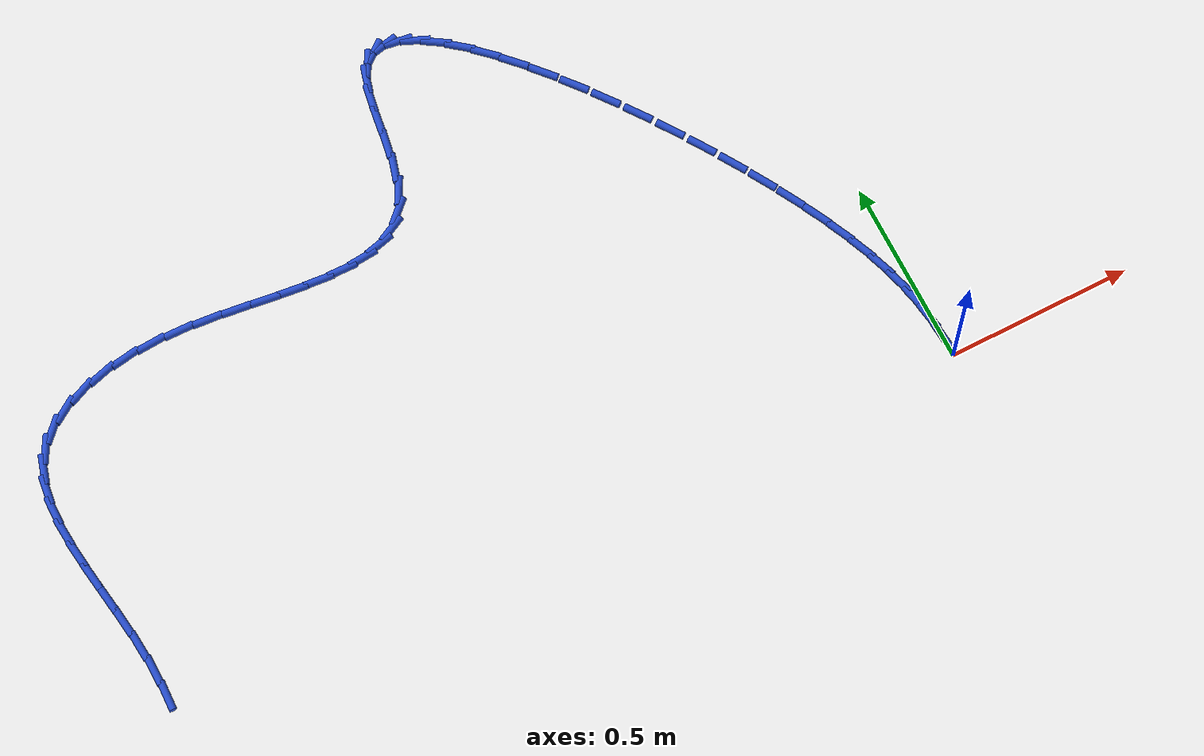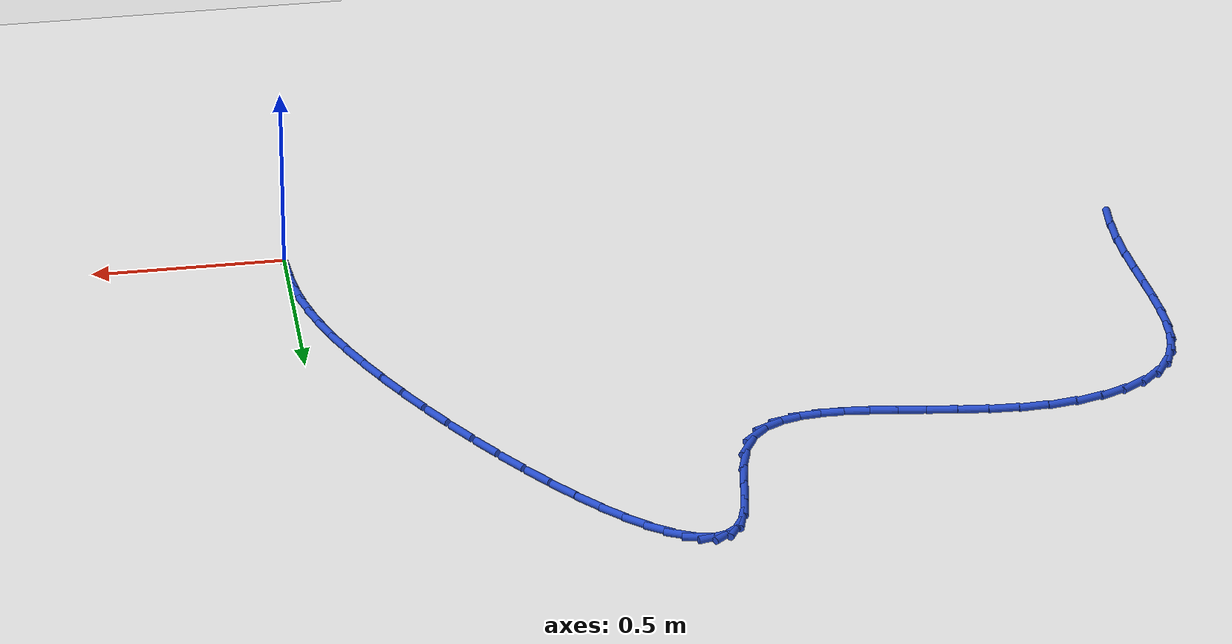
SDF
<sdf version="1.6">
 <world name="default">
  <model name="ground_plane">
   <static>1</static>
   <link name="link">
    <collision name="collision">
     <geometry><plane><normal>0 0 1</normal><size>100 100</size></plane></geometry>
     <surface><friction><ode><mu>100</mu><mu2>50</mu2></ode></friction></surface>
    </collision>
    <visual name="visual">
     <cast_shadows>0</cast_shadows>
     <geometry><plane><normal>0 0 1</normal><size>100 100</size></plane></geometry>
     <material>
      <script><uri>file://media/materials/scripts/gazebo.material</uri><name>Gazebo/WhiteGlow</name></script>
     </material>
    </visual>
   </link>
  </model>
  <model name="line">
   <link name="link_1">
    <pose>-0.0011779930362699025 0.060176432748080315 0.01 0 1.57 -1.483784300467491</pose>
    <collision name="collision">
     <geometry><cylinder><radius>0.01</radius><length>0.08</length></cylinder></geometry>
    </collision>
    <visual name="visual">
     <material>
      <script><name>Gazebo/Blue</name><uri>file://media/materials/scripts/gazebo.material</uri></script>
     </material>
     <geometry><cylinder><radius>0.01</radius><length>0.08</length></cylinder></geometry>
    </visual>
   </link>
   <link name="link_2">
    <pose>-0.006324387085127437 0.1191728699428828 0.01 0 1.57 -1.4138084706846794</pose>
    <collision name="collision">
     <geometry><cylinder><radius>0.01</radius><length>0.08</length></cylinder></geometry>
    </collision>
    <visual name="visual">
     <material>
      <script><name>Gazebo/Blue</name><uri>file://media/materials/scripts/gazebo.material</uri></script>
     </material>
     <geometry><cylinder><radius>0.01</radius><length>0.08</length></cylinder></geometry>
    </visual>
   </link>
   <link name="link_3">
    <pose>-0.015595806867634013 0.17774510147746933 0.01 0 1.57 -1.3446442154031313</pose>
    <collision name="collision">
     <geometry><cylinder><radius>0.01</radius><length>0.08</length></cylinder></geometry>
    </collision>
    <visual name="visual">
     <material>
      <script><name>Gazebo/Blue</name><uri>file://media/materials/scripts/gazebo.material</uri></script>
     </material>
     <geometry><cylinder><radius>0.01</radius><length>0.08</length></cylinder></geometry>
    </visual>
   </link>
   <link name="link_4">
    <pose>-0.029148877104850965 0.2366489172449016 0.01 0 1.57 -1.279431468152823</pose>
    <collision name="collision">
     <geometry><cylinder><radius>0.01</radius><length>0.08</length></cylinder></geometry>
    </collision>
    <visual name="visual">
     <material>
      <script><name>Gazebo/Blue</name><uri>file://media/materials/scripts/gazebo.material</uri></script>
     </material>
     <geometry><cylinder><radius>0.01</radius><length>0.08</length></cylinder></geometry>
    </visual>
   </link>
   <link name="link_5">
    <pose>-0.047140222517839704 0.29664010713824174 0.01 0 1.57 -1.220583079216178</pose>
    <collision name="collision">
     <geometry><cylinder><radius>0.01</radius><length>0.08</length></cylinder></geometry>
    </collision>
    <visual name="visual">
     <material>
      <script><name>Gazebo/Blue</name><uri>file://media/materials/scripts/gazebo.material</uri></script>
     </material>
     <geometry><cylinder><radius>0.01</radius><length>0.08</length></cylinder></geometry>
    </visual>
   </link>
   <link name="link_6">
    <pose>-0.06972646782766165 0.35847446105055153 0.01 0 1.57 -1.1695356038434659</pose>
    <collision name="collision">
     <geometry><cylinder><radius>0.01</radius><length>0.08</length></cylinder></geometry>
    </collision>
    <visual name="visual">
     <material>
      <script><name>Gazebo/Blue</name><uri>file://media/materials/scripts/gazebo.material</uri></script>
     </material>
     <geometry><cylinder><radius>0.01</radius><length>0.08</length></cylinder></geometry>
    </visual>
   </link>
   <link name="link_7">
    <pose>-0.09706423775537805 0.42290776887489256 0.01 0 1.57 -1.126787316354783</pose>
    <collision name="collision">
     <geometry><cylinder><radius>0.01</radius><length>0.08</length></cylinder></geometry>
    </collision>
    <visual name="visual">
     <material>
      <script><name>Gazebo/Blue</name><uri>file://media/materials/scripts/gazebo.material</uri></script>
     </material>
     <geometry><cylinder><radius>0.01</radius><length>0.08</length></cylinder></geometry>
    </visual>
   </link>
   <link name="link_8">
    <pose>-0.12931015702205037 0.4906958205043269 0.01 0 1.57 -1.0919233688777297</pose>
    <collision name="collision">
     <geometry><cylinder><radius>0.01</radius><length>0.08</length></cylinder></geometry>
    </collision>
    <visual name="visual">
     <material>
      <script><name>Gazebo/Blue</name><uri>file://media/materials/scripts/gazebo.material</uri></script>
     </material>
     <geometry><cylinder><radius>0.01</radius><length>0.08</length></cylinder></geometry>
    </visual>
   </link>
   <link name="link_9">
    <pose>-0.166534161024096 0.5623936195328567 0.01 0 1.57 -1.0625949085609663</pose>
    <collision name="collision">
     <geometry><cylinder><radius>0.01</radius><length>0.08</length></cylinder></geometry>
    </collision>
    <visual name="visual">
     <material>
      <script><name>Gazebo/Blue</name><uri>file://media/materials/scripts/gazebo.material</uri></script>
     </material>
     <geometry><cylinder><radius>0.01</radius><length>0.08</length></cylinder></geometry>
    </visual>
   </link>
   <link name="link_10">
    <pose>-0.2082874059668987 0.6373545942252881 0.01 0 1.57 -1.0364813016455805</pose>
    <collision name="collision">
     <geometry><cylinder><radius>0.01</radius><length>0.08</length></cylinder></geometry>
    </collision>
    <visual name="visual">
     <material>
      <script><name>Gazebo/Blue</name><uri>file://media/materials/scripts/gazebo.material</uri></script>
     </material>
     <geometry><cylinder><radius>0.01</radius><length>0.08</length></cylinder></geometry>
    </visual>
   </link>
   <link name="link_11">
    <pose>-0.2539289165528095 0.7144871656487688 0.01 0 1.57 -1.0121411813017884</pose>
    <collision name="collision">
     <geometry><cylinder><radius>0.01</radius><length>0.08</length></cylinder></geometry>
    </collision>
    <visual name="visual">
     <material>
      <script><name>Gazebo/Blue</name><uri>file://media/materials/scripts/gazebo.material</uri></script>
     </material>
     <geometry><cylinder><radius>0.01</radius><length>0.08</length></cylinder></geometry>
    </visual>
   </link>
   <link name="link_12">
    <pose>-0.3028174051076901 0.7926990313566866 0.01 0 1.57 -0.9884668378446325</pose>
    <collision name="collision">
     <geometry><cylinder><radius>0.01</radius><length>0.08</length></cylinder></geometry>
    </collision>
    <visual name="visual">
     <material>
      <script><name>Gazebo/Blue</name><uri>file://media/materials/scripts/gazebo.material</uri></script>
     </material>
     <geometry><cylinder><radius>0.01</radius><length>0.08</length></cylinder></geometry>
    </visual>
   </link>
   <link name="link_13">
    <pose>-0.354311583957402 0.8708978889024286 0.01 0 1.57 -0.9644968571802371</pose>
    <collision name="collision">
     <geometry><cylinder><radius>0.01</radius><length>0.08</length></cylinder></geometry>
    </collision>
    <visual name="visual">
     <material>
      <script><name>Gazebo/Blue</name><uri>file://media/materials/scripts/gazebo.material</uri></script>
     </material>
     <geometry><cylinder><radius>0.01</radius><length>0.08</length></cylinder></geometry>
    </visual>
   </link>
   <link name="link_14">
    <pose>-0.407770165427807 0.9479914358393833 0.01 0 1.57 -0.9392814308893133</pose>
    <collision name="collision">
     <geometry><cylinder><radius>0.01</radius><length>0.08</length></cylinder></geometry>
    </collision>
    <visual name="visual">
     <material>
      <script><name>Gazebo/Blue</name><uri>file://media/materials/scripts/gazebo.material</uri></script>
     </material>
     <geometry><cylinder><radius>0.01</radius><length>0.08</length></cylinder></geometry>
    </visual>
   </link>
   <link name="link_15">
    <pose>-0.46255186184476654 1.0228873697209382 0.01 0 1.57 -0.9117580141673438</pose>
    <collision name="collision">
     <geometry><cylinder><radius>0.01</radius><length>0.08</length></cylinder></geometry>
    </collision>
    <visual name="visual">
     <material>
      <script><name>Gazebo/Blue</name><uri>file://media/materials/scripts/gazebo.material</uri></script>
     </material>
     <geometry><cylinder><radius>0.01</radius><length>0.08</length></cylinder></geometry>
    </visual>
   </link>
   <link name="link_16">
    <pose>-0.5180153855341425 1.0944933881004808 0.01 0 1.57 -0.8806031655156172</pose>
    <collision name="collision">
     <geometry><cylinder><radius>0.01</radius><length>0.08</length></cylinder></geometry>
    </collision>
    <visual name="visual">
     <material>
      <script><name>Gazebo/Blue</name><uri>file://media/materials/scripts/gazebo.material</uri></script>
     </material>
     <geometry><cylinder><radius>0.01</radius><length>0.08</length></cylinder></geometry>
    </visual>
   </link>
   <link name="link_17">
    <pose>-0.5735194488217966 1.1617171885313997 0.01 0 1.57 -0.8440177040000211</pose>
    <collision name="collision">
     <geometry><cylinder><radius>0.01</radius><length>0.08</length></cylinder></geometry>
    </collision>
    <visual name="visual">
     <material>
      <script><name>Gazebo/Blue</name><uri>file://media/materials/scripts/gazebo.material</uri></script>
     </material>
     <geometry><cylinder><radius>0.01</radius><length>0.08</length></cylinder></geometry>
    </visual>
   </link>
   <link name="link_18">
    <pose>-0.6284227640335904 1.223466468567082 0.01 0 1.57 -0.7993730484035044</pose>
    <collision name="collision">
     <geometry><cylinder><radius>0.01</radius><length>0.08</length></cylinder></geometry>
    </collision>
    <visual name="visual">
     <material>
      <script><name>Gazebo/Blue</name><uri>file://media/materials/scripts/gazebo.material</uri></script>
     </material>
     <geometry><cylinder><radius>0.01</radius><length>0.08</length></cylinder></geometry>
    </visual>
   </link>
   <link name="link_19">
    <pose>-0.6820840434953854 1.2786489257609157 0.01 0 1.57 -0.7425787436881797</pose>
    <collision name="collision">
     <geometry><cylinder><radius>0.01</radius><length>0.08</length></cylinder></geometry>
    </collision>
    <visual name="visual">
     <material>
      <script><name>Gazebo/Blue</name><uri>file://media/materials/scripts/gazebo.material</uri></script>
     </material>
     <geometry><cylinder><radius>0.01</radius><length>0.08</length></cylinder></geometry>
    </visual>
   </link>
   <link name="link_20">
    <pose>-0.7338619995330439 1.3261722576662887 0.01 0 1.57 -0.6668830628695337</pose>
    <collision name="collision">
     <geometry><cylinder><radius>0.01</radius><length>0.08</length></cylinder></geometry>
    </collision>
    <visual name="visual">
     <material>
      <script><name>Gazebo/Blue</name><uri>file://media/materials/scripts/gazebo.material</uri></script>
     </material>
     <geometry><cylinder><radius>0.01</radius><length>0.08</length></cylinder></geometry>
    </visual>
   </link>
   <link name="link_21">
    <pose>-0.7831153444724266 1.364944161836588 0.01 0 1.57 -0.5605242754244852</pose>
    <collision name="collision">
     <geometry><cylinder><radius>0.01</radius><length>0.08</length></cylinder></geometry>
    </collision>
    <visual name="visual">
     <material>
      <script><name>Gazebo/Blue</name><uri>file://media/materials/scripts/gazebo.material</uri></script>
     </material>
     <geometry><cylinder><radius>0.01</radius><length>0.08</length></cylinder></geometry>
    </visual>
   </link>
   <link name="link_22">
    <pose>-0.8292027906393962 1.3938723358252028 0.01 0 1.57 -0.40233194121942834</pose>
    <collision name="collision">
     <geometry><cylinder><radius>0.01</radius><length>0.08</length></cylinder></geometry>
    </collision>
    <visual name="visual">
     <material>
      <script><name>Gazebo/Blue</name><uri>file://media/materials/scripts/gazebo.material</uri></script>
     </material>
     <geometry><cylinder><radius>0.01</radius><length>0.08</length></cylinder></geometry>
    </visual>
   </link>
   <link name="link_23">
    <pose>-0.8714830503598134 1.41186447718552 0.01 0 1.57 -0.15635341963278773</pose>
    <collision name="collision">
     <geometry><cylinder><radius>0.01</radius><length>0.08</length></cylinder></geometry>
    </collision>
    <visual name="visual">
     <material>
      <script><name>Gazebo/Blue</name><uri>file://media/materials/scripts/gazebo.material</uri></script>
     </material>
     <geometry><cylinder><radius>0.01</radius><length>0.08</length></cylinder></geometry>
    </visual>
   </link>
   <link name="link_24">
    <pose>-0.9093148359595409 1.4178282834709277 0.01 0 1.57 0.2151977796142608</pose>
    <collision name="collision">
     <geometry><cylinder><radius>0.01</radius><length>0.08</length></cylinder></geometry>
    </collision>
    <visual name="visual">
     <material>
      <script><name>Gazebo/Blue</name><uri>file://media/materials/scripts/gazebo.material</uri></script>
     </material>
     <geometry><cylinder><radius>0.01</radius><length>0.08</length></cylinder></geometry>
    </visual>
   </link>
   <link name="link_25">
    <pose>-0.9420568597644391 1.4106714522348125 0.01 0 1.57 0.669322141216123</pose>
    <collision name="collision">
     <geometry><cylinder><radius>0.01</radius><length>0.08</length></cylinder></geometry>
    </collision>
    <visual name="visual">
     <material>
      <script><name>Gazebo/Blue</name><uri>file://media/materials/scripts/gazebo.material</uri></script>
     </material>
     <geometry><cylinder><radius>0.01</radius><length>0.08</length></cylinder></geometry>
    </visual>
   </link>
   <link name="link_26">
    <pose>-0.969067834100371 1.3893016810305643 0.01 0 1.57 1.0582216708440209</pose>
    <collision name="collision">
     <geometry><cylinder><radius>0.01</radius><length>0.08</length></cylinder></geometry>
    </collision>
    <visual name="visual">
     <material>
      <script><name>Gazebo/Blue</name><uri>file://media/materials/scripts/gazebo.material</uri></script>
     </material>
     <geometry><cylinder><radius>0.01</radius><length>0.08</length></cylinder></geometry>
    </visual>
   </link>
   <link name="link_27">
    <pose>-0.9897064712931971 1.3526266674115692 0.01 0 1.57 1.3064090404301831</pose>
    <collision name="collision">
     <geometry><cylinder><radius>0.01</radius><length>0.08</length></cylinder></geometry>
    </collision>
    <visual name="visual">
     <material>
      <script><name>Gazebo/Blue</name><uri>file://media/materials/scripts/gazebo.material</uri></script>
     </material>
     <geometry><cylinder><radius>0.01</radius><length>0.08</length></cylinder></geometry>
    </visual>
   </link>
   <link name="link_28">
    <pose>-1.0038343887301657 1.300441141183815 0.01 0 1.57 1.4128685716343656</pose>
    <collision name="collision">
     <geometry><cylinder><radius>0.01</radius><length>0.08</length></cylinder></geometry>
    </collision>
    <visual name="visual">
     <material>
      <script><name>Gazebo/Blue</name><uri>file://media/materials/scripts/gazebo.material</uri></script>
     </material>
     <geometry><cylinder><radius>0.01</radius><length>0.08</length></cylinder></geometry>
    </visual>
   </link>
   <link name="link_29">
    <pose>-1.013916647181379 1.2371318285870607 0.01 0 1.57 1.4353855869779029</pose>
    <collision name="collision">
     <geometry><cylinder><radius>0.01</radius><length>0.08</length></cylinder></geometry>
    </collision>
    <visual name="visual">
     <material>
      <script><name>Gazebo/Blue</name><uri>file://media/materials/scripts/gazebo.material</uri></script>
     </material>
     <geometry><cylinder><radius>0.01</radius><length>0.08</length></cylinder></geometry>
    </visual>
   </link>
   <link name="link_30">
    <pose>-1.0232582359709261 1.1685669357157562 0.01 0 1.57 1.3973393136042047</pose>
    <collision name="collision">
     <geometry><cylinder><radius>0.01</radius><length>0.08</length></cylinder></geometry>
    </collision>
    <visual name="visual">
     <material>
      <script><name>Gazebo/Blue</name><uri>file://media/materials/scripts/gazebo.material</uri></script>
     </material>
     <geometry><cylinder><radius>0.01</radius><length>0.08</length></cylinder></geometry>
    </visual>
   </link>
   <link name="link_31">
    <pose>-1.0351645570423316 1.100615396449327 0.01 0 1.57 1.2892837924687943</pose>
    <collision name="collision">
     <geometry><cylinder><radius>0.01</radius><length>0.08</length></cylinder></geometry>
    </collision>
    <visual name="visual">
     <material>
      <script><name>Gazebo/Blue</name><uri>file://media/materials/scripts/gazebo.material</uri></script>
     </material>
     <geometry><cylinder><radius>0.01</radius><length>0.08</length></cylinder></geometry>
    </visual>
   </link>
   <link name="link_32">
    <pose>-1.0529410123391207 1.0391461446671977 0.01 0 1.57 1.0727863641068196</pose>
    <collision name="collision">
     <geometry><cylinder><radius>0.01</radius><length>0.08</length></cylinder></geometry>
    </collision>
    <visual name="visual">
     <material>
      <script><name>Gazebo/Blue</name><uri>file://media/materials/scripts/gazebo.material</uri></script>
     </material>
     <geometry><cylinder><radius>0.01</radius><length>0.08</length></cylinder></geometry>
    </visual>
   </link>
   <link name="link_33">
    <pose>-1.079767401050618 0.989807656462172 0.01 0 1.57 0.7677791040996254</pose>
    <collision name="collision">
     <geometry><cylinder><radius>0.01</radius><length>0.08</length></cylinder></geometry>
    </collision>
    <visual name="visual">
     <material>
      <script><name>Gazebo/Blue</name><uri>file://media/materials/scripts/gazebo.material</uri></script>
     </material>
     <geometry><cylinder><radius>0.01</radius><length>0.08</length></cylinder></geometry>
    </visual>
   </link>
   <link name="link_34">
    <pose>-1.1165650595768488 0.9542843570519919 0.01 0 1.57 0.47388845905025134</pose>
    <collision name="collision">
     <geometry><cylinder><radius>0.01</radius><length>0.08</length></cylinder></geometry>
    </collision>
    <visual name="visual">
     <material>
      <script><name>Gazebo/Blue</name><uri>file://media/materials/scripts/gazebo.material</uri></script>
     </material>
     <geometry><cylinder><radius>0.01</radius><length>0.08</length></cylinder></geometry>
    </visual>
   </link>
   <link name="link_35">
    <pose>-1.162299871298483 0.9308284631233367 0.01 0 1.57 0.2424535692173243</pose>
    <collision name="collision">
     <geometry><cylinder><radius>0.01</radius><length>0.08</length></cylinder></geometry>
    </collision>
    <visual name="visual">
     <material>
      <script><name>Gazebo/Blue</name><uri>file://media/materials/scripts/gazebo.material</uri></script>
     </material>
     <geometry><cylinder><radius>0.01</radius><length>0.08</length></cylinder></geometry>
    </visual>
   </link>
   <link name="link_36">
    <pose>-1.2158731133407947 0.9175787945496007 0.01 0 1.57 0.08114102964720742</pose>
    <collision name="collision">
     <geometry><cylinder><radius>0.01</radius><length>0.08</length></cylinder></geometry>
    </collision>
    <visual name="visual">
     <material>
      <script><name>Gazebo/Blue</name><uri>file://media/materials/scripts/gazebo.material</uri></script>
     </material>
     <geometry><cylinder><radius>0.01</radius><length>0.08</length></cylinder></geometry>
    </visual>
   </link>
   <link name="link_37">
    <pose>-1.2761860628290598 0.9126741712041783 0.01 0 1.57 -0.023940043394516258</pose>
    <collision name="collision">
     <geometry><cylinder><radius>0.01</radius><length>0.08</length></cylinder></geometry>
    </collision>
    <visual name="visual">
     <material>
      <script><name>Gazebo/Blue</name><uri>file://media/materials/scripts/gazebo.material</uri></script>
     </material>
     <geometry><cylinder><radius>0.01</radius><length>0.08</length></cylinder></geometry>
    </visual>
   </link>
   <link name="link_38">
    <pose>-1.3421399968885528 0.9142534129604637 0.01 0 1.57 -0.08774942094425754</pose>
    <collision name="collision">
     <geometry><cylinder><radius>0.01</radius><length>0.08</length></cylinder></geometry>
    </collision>
    <visual name="visual">
     <material>
      <script><name>Gazebo/Blue</name><uri>file://media/materials/scripts/gazebo.material</uri></script>
     </material>
     <geometry><cylinder><radius>0.01</radius><length>0.08</length></cylinder></geometry>
    </visual>
   </link>
   <link name="link_39">
    <pose>-1.4126361926445494 0.9204553396918516 0.01 0 1.57 -0.12063752386928146</pose>
    <collision name="collision">
     <geometry><cylinder><radius>0.01</radius><length>0.08</length></cylinder></geometry>
    </collision>
    <visual name="visual">
     <material>
      <script><name>Gazebo/Blue</name><uri>file://media/materials/scripts/gazebo.material</uri></script>
     </material>
     <geometry><cylinder><radius>0.01</radius><length>0.08</length></cylinder></geometry>
    </visual>
   </link>
   <link name="link_40">
    <pose>-1.4865759272223247 0.9294187712717362 0.01 0 1.57 -0.12858868939504225</pose>
    <collision name="collision">
     <geometry><cylinder><radius>0.01</radius><length>0.08</length></cylinder></geometry>
    </collision>
    <visual name="visual">
     <material>
      <script><name>Gazebo/Blue</name><uri>file://media/materials/scripts/gazebo.material</uri></script>
     </material>
     <geometry><cylinder><radius>0.01</radius><length>0.08</length></cylinder></geometry>
    </visual>
   </link>
   <link name="link_41">
    <pose>-1.5628604777471544 0.9392825275735123 0.01 0 1.57 -0.11432996924307257</pose>
    <collision name="collision">
     <geometry><cylinder><radius>0.01</radius><length>0.08</length></cylinder></geometry>
    </collision>
    <visual name="visual">
     <material>
      <script><name>Gazebo/Blue</name><uri>file://media/materials/scripts/gazebo.material</uri></script>
     </material>
     <geometry><cylinder><radius>0.01</radius><length>0.08</length></cylinder></geometry>
    </visual>
   </link>
   <link name="link_42">
    <pose>-1.6403911213443116 0.9481854284705734 0.01 0 1.57 -0.07812364028227448</pose>
    <collision name="collision">
     <geometry><cylinder><radius>0.01</radius><length>0.08</length></cylinder></geometry>
    </collision>
    <visual name="visual">
     <material>
      <script><name>Gazebo/Blue</name><uri>file://media/materials/scripts/gazebo.material</uri></script>
     </material>
     <geometry><cylinder><radius>0.01</radius><length>0.08</length></cylinder></geometry>
    </visual>
   </link>
   <link name="link_43">
    <pose>-1.718069135139074 0.9542662938363147 0.01 0 1.57 -0.0182139445182906</pose>
    <collision name="collision">
     <geometry><cylinder><radius>0.01</radius><length>0.08</length></cylinder></geometry>
    </collision>
    <visual name="visual">
     <material>
      <script><name>Gazebo/Blue</name><uri>file://media/materials/scripts/gazebo.material</uri></script>
     </material>
     <geometry><cylinder><radius>0.01</radius><length>0.08</length></cylinder></geometry>
    </visual>
   </link>
   <link name="link_44">
    <pose>-1.7947957962567154 0.9556639435441303 0.01 0 1.57 0.06638338550764232</pose>
    <collision name="collision">
     <geometry><cylinder><radius>0.01</radius><length>0.08</length></cylinder></geometry>
    </collision>
    <visual name="visual">
     <material>
      <script><name>Gazebo/Blue</name><uri>file://media/materials/scripts/gazebo.material</uri></script>
     </material>
     <geometry><cylinder><radius>0.01</radius><length>0.08</length></cylinder></geometry>
    </visual>
   </link>
   <link name="link_45">
    <pose>-1.8694012116357486 0.9507040957432755 0.01 0 1.57 0.16508326573282991</pose>
    <collision name="collision">
     <geometry><cylinder><radius>0.01</radius><length>0.08</length></cylinder></geometry>
    </collision>
    <visual name="visual">
     <material>
      <script><name>Gazebo/Blue</name><uri>file://media/materials/scripts/gazebo.material</uri></script>
     </material>
     <geometry><cylinder><radius>0.01</radius><length>0.08</length></cylinder></geometry>
    </visual>
   </link>
   <link name="link_46">
    <pose>-1.940263884404908 0.9388984142332719 0.01 0 1.57 0.2784803570017414</pose>
    <collision name="collision">
     <geometry><cylinder><radius>0.01</radius><length>0.08</length></cylinder></geometry>
    </collision>
    <visual name="visual">
     <material>
      <script><name>Gazebo/Blue</name><uri>file://media/materials/scripts/gazebo.material</uri></script>
     </material>
     <geometry><cylinder><radius>0.01</radius><length>0.08</length></cylinder></geometry>
    </visual>
   </link>
   <link name="link_47">
    <pose>-2.0055857442594993 0.9202222579614598 0.01 0 1.57 0.4153427512681426</pose>
    <collision name="collision">
     <geometry><cylinder><radius>0.01</radius><length>0.08</length></cylinder></geometry>
    </collision>
    <visual name="visual">
     <material>
      <script><name>Gazebo/Blue</name><uri>file://media/materials/scripts/gazebo.material</uri></script>
     </material>
     <geometry><cylinder><radius>0.01</radius><length>0.08</length></cylinder></geometry>
    </visual>
   </link>
   <link name="link_48">
    <pose>-2.0635683129854043 0.8946520570760728 0.01 0 1.57 0.586933374683759</pose>
    <collision name="collision">
     <geometry><cylinder><radius>0.01</radius><length>0.08</length></cylinder></geometry>
    </collision>
    <visual name="visual">
     <material>
      <script><name>Gazebo/Blue</name><uri>file://media/materials/scripts/gazebo.material</uri></script>
     </material>
     <geometry><cylinder><radius>0.01</radius><length>0.08</length></cylinder></geometry>
    </visual>
   </link>
   <link name="link_49">
    <pose>-2.112413112368504 0.8621642417253448 0.01 0 1.57 0.8049832745869617</pose>
    <collision name="collision">
     <geometry><cylinder><radius>0.01</radius><length>0.08</length></cylinder></geometry>
    </collision>
    <visual name="visual">
     <material>
      <script><name>Gazebo/Blue</name><uri>file://media/materials/scripts/gazebo.material</uri></script>
     </material>
     <geometry><cylinder><radius>0.01</radius><length>0.08</length></cylinder></geometry>
    </visual>
   </link>
   <link name="link_50">
    <pose>-2.1503261674221625 0.8227362601684266 0.01 0 1.57 1.0550728918071204</pose>
    <collision name="collision">
     <geometry><cylinder><radius>0.01</radius><length>0.08</length></cylinder></geometry>
    </collision>
    <visual name="visual">
     <material>
      <script><name>Gazebo/Blue</name><uri>file://media/materials/scripts/gazebo.material</uri></script>
     </material>
     <geometry><cylinder><radius>0.01</radius><length>0.08</length></cylinder></geometry>
    </visual>
   </link>
   <link name="link_51">
    <pose>-2.1764986576426253 0.7765682890384399 0.01 0 1.57 1.276283907219536</pose>
    <collision name="collision">
     <geometry><cylinder><radius>0.01</radius><length>0.08</length></cylinder></geometry>
    </collision>
    <visual name="visual">
     <material>
      <script><name>Gazebo/Blue</name><uri>file://media/materials/scripts/gazebo.material</uri></script>
     </material>
     <geometry><cylinder><radius>0.01</radius><length>0.08</length></cylinder></geometry>
    </visual>
   </link>
   <link name="link_52">
    <pose>-2.1923349277707787 0.7243608678098992 0.01 0 1.57 1.4460738770262922</pose>
    <collision name="collision">
     <geometry><cylinder><radius>0.01</radius><length>0.08</length></cylinder></geometry>
    </collision>
    <visual name="visual">
     <material>
      <script><name>Gazebo/Blue</name><uri>file://media/materials/scripts/gazebo.material</uri></script>
     </material>
     <geometry><cylinder><radius>0.01</radius><length>0.08</length></cylinder></geometry>
    </visual>
   </link>
   <link name="link_53">
    <pose>-2.199541141298728 0.6668827725647358 0.01 0 1.57 1.5662413332746166</pose>
    <collision name="collision">
     <geometry><cylinder><radius>0.01</radius><length>0.08</length></cylinder></geometry>
    </collision>
    <visual name="visual">
     <material>
      <script><name>Gazebo/Blue</name><uri>file://media/materials/scripts/gazebo.material</uri></script>
     </material>
     <geometry><cylinder><radius>0.01</radius><length>0.08</length></cylinder></geometry>
    </visual>
   </link>
   <link name="link_54">
    <pose>-2.1998234617185766 0.6049027793848804 0.01 0 1.57 -1.495831678450007</pose>
    <collision name="collision">
     <geometry><cylinder><radius>0.01</radius><length>0.08</length></cylinder></geometry>
    </collision>
    <visual name="visual">
     <material>
      <script><name>Gazebo/Blue</name><uri>file://media/materials/scripts/gazebo.material</uri></script>
     </material>
     <geometry><cylinder><radius>0.01</radius><length>0.08</length></cylinder></geometry>
    </visual>
   </link>
   <link name="link_55">
    <pose>-2.1948880525224284 0.5391896643522637 0.01 0 1.57 -1.4484160994938216</pose>
    <collision name="collision">
     <geometry><cylinder><radius>0.01</radius><length>0.08</length></cylinder></geometry>
    </collision>
    <visual name="visual">
     <material>
      <script><name>Gazebo/Blue</name><uri>file://media/materials/scripts/gazebo.material</uri></script>
     </material>
     <geometry><cylinder><radius>0.01</radius><length>0.08</length></cylinder></geometry>
    </visual>
   </link>
   <link name="link_56">
    <pose>-2.1864410772023883 0.4705122035488159 0.01 0 1.57 -1.4271345042296326</pose>
    <collision name="collision">
     <geometry><cylinder><radius>0.01</radius><length>0.08</length></cylinder></geometry>
    </collision>
    <visual name="visual">
     <material>
      <script><name>Gazebo/Blue</name><uri>file://media/materials/scripts/gazebo.material</uri></script>
     </material>
     <geometry><cylinder><radius>0.01</radius><length>0.08</length></cylinder></geometry>
    </visual>
   </link>
   <link name="link_57">
    <pose>-2.1761886992505586 0.3996391730564685 0.01 0 1.57 -1.4285865692855535</pose>
    <collision name="collision">
     <geometry><cylinder><radius>0.01</radius><length>0.08</length></cylinder></geometry>
    </collision>
    <visual name="visual">
     <material>
      <script><name>Gazebo/Blue</name><uri>file://media/materials/scripts/gazebo.material</uri></script>
     </material>
     <geometry><cylinder><radius>0.01</radius><length>0.08</length></cylinder></geometry>
    </visual>
   </link>
   <link name="link_58">
    <pose>-2.1658370821590447 0.32733934895715155 0.01 0 1.57 -1.4515058772370206</pose>
    <collision name="collision">
     <geometry><cylinder><radius>0.01</radius><length>0.08</length></cylinder></geometry>
    </collision>
    <visual name="visual">
     <material>
      <script><name>Gazebo/Blue</name><uri>file://media/materials/scripts/gazebo.material</uri></script>
     </material>
     <geometry><cylinder><radius>0.01</radius><length>0.08</length></cylinder></geometry>
    </visual>
   </link>
   <link name="link_59">
    <pose>-2.1570923894199505 0.2543815073327966 0.01 0 1.57 -1.4963709306828892</pose>
    <collision name="collision">
     <geometry><cylinder><radius>0.01</radius><length>0.08</length></cylinder></geometry>
    </collision>
    <visual name="visual">
     <material>
      <script><name>Gazebo/Blue</name><uri>file://media/materials/scripts/gazebo.material</uri></script>
     </material>
     <geometry><cylinder><radius>0.01</radius><length>0.08</length></cylinder></geometry>
    </visual>
   </link>
   <link name="link_60">
    <pose>-2.1516606817812445 0.1815343984034257 0.01 0 1.57 -1.5576904165934893</pose>
    <collision name="collision">
     <geometry><cylinder><radius>0.01</radius><length>0.08</length></cylinder></geometry>
    </collision>
    <visual name="visual">
     <material>
      <script><name>Gazebo/Blue</name><uri>file://media/materials/scripts/gazebo.material</uri></script>
     </material>
     <geometry><cylinder><radius>0.01</radius><length>0.08</length></cylinder></geometry>
    </visual>
   </link>
   <link name="link_61">
    <pose>-2.1507156702552535 0.10943277369733355 0.01 0 1.57 1.529473355393164</pose>
    <collision name="collision">
     <geometry><cylinder><radius>0.01</radius><length>0.08</length></cylinder></geometry>
    </collision>
    <visual name="visual">
     <material>
      <script><name>Gazebo/Blue</name><uri>file://media/materials/scripts/gazebo.material</uri></script>
     </material>
     <geometry><cylinder><radius>0.01</radius><length>0.08</length></cylinder></geometry>
    </visual>
   </link>
  </model>
 </world>
</sdf>
